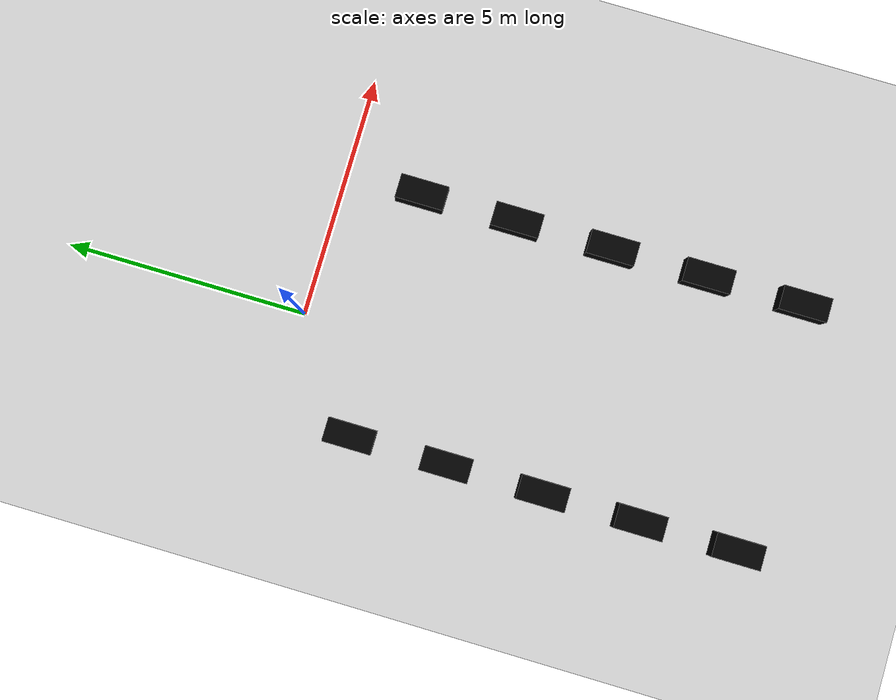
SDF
<sdf version="1.8">
 <world name="default">
  <scene><shadows>0</shadows></scene>
  <physics type="ode">
   <real_time_update_rate>1000.0</real_time_update_rate>
   <max_step_size>0.001</max_step_size>
   <real_time_factor>1</real_time_factor>
   <ode>
    <solver>
     <type>quick</type>
     <iters>150</iters>
     <precon_iters>0</precon_iters>
     <sor>1.400000</sor>
     <use_dynamic_moi_rescaling>1</use_dynamic_moi_rescaling>
    </solver>
    <constraints>
     <cfm>0.00001</cfm>
     <erp>0.2</erp>
     <contact_max_correcting_vel>2000.000000</contact_max_correcting_vel>
     <contact_surface_layer>0.01000</contact_surface_layer>
    </constraints>
   </ode>
  </physics>
  <plugin filename="gz-sim-physics-system" name="gz::sim::systems::Physics"/>
  <plugin filename="gz-sim-user-commands-system" name="gz::sim::systems::UserCommands"/>
  <plugin filename="gz-sim-scene-broadcaster-system" name="gz::sim::systems::SceneBroadcaster"/>
  <plugin filename="gz-sim-sensors-system" name="gz::sim::systems::Sensors">
   <render_engine>ogre2</render_engine>
  </plugin>
  <plugin filename="gz-sim-imu-system" name="gz::sim::systems::Imu"/>
  <include><uri>https://fuel.gazebosim.org/1.0/OpenRobotics/models/Ground Plane</uri></include>
  <include><uri>https://fuel.gazebosim.org/1.0/OpenRobotics/models/Sun</uri></include>
  <include><uri>model://gate1</uri><name>gate1</name><pose>-2.1 -1.6 0 0 0 0</pose></include>
  <include><uri>model://gate1</uri><name>gate2</name><pose>-2.1 -3.6 0 0 0 0</pose></include>
  <include><uri>model://gate1</uri><name>gate3</name><pose>-2.1 -5.6 0 0 0 0</pose></include>
  <include><uri>model://gate1</uri><name>gate4</name><pose>-2.1 -7.6 0 0 0 0</pose></include>
  <include><uri>model://gate1</uri><name>gate5</name><pose>-2.1 -9.6 0 0 0 0</pose></include>
  <include><uri>model://gate1</uri><name>gate6</name><pose>3 -1.6 0 0 0 0</pose></include>
  <include><uri>model://gate1</uri><name>gate7</name><pose>3 -3.6 0 0 0 0</pose></include>
  <include><uri>model://gate1</uri><name>gate8</name><pose>3 -5.6 0 0 0 0</pose></include>
  <include><uri>model://gate1</uri><name>gate9</name><pose>3 -7.6 0 0 0 0</pose></include>
  <include><uri>model://gate1</uri><name>gate10</name><pose>3 -9.6 0 0 0 0</pose></include>
 </world>
</sdf>

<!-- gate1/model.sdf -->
<sdf version="1.8">
  <model name="gate1">
    <pose>-2.1 -1.6 0.5 0 0 0</pose>
    <static>true</static>
    <link name="link">
      <pose>0 0 0 0 0 0</pose>
      <collision name="collision">
        <geometry>
          <box>
            <size>0.5 1.0 1.0</size>
          </box>
        </geometry>
      </collision>
      <visual name="visual">
        <geometry>
          <box>
            <size>0.5 1.0 1.0</size>
          </box>
        </geometry>
        <material>
          <ambient>0 0 0 1</ambient>
          <diffuse>0 0 0 1</diffuse>
        </material>
      </visual>
    </link>
    <!-- NEW PLUGIN for Ground Truth Pose -->
<plugin
  filename="gz-sim-odometry-publisher-system"
  name="gz::sim::systems::OdometryPublisher">

</plugin>

  </model>
</sdf>
